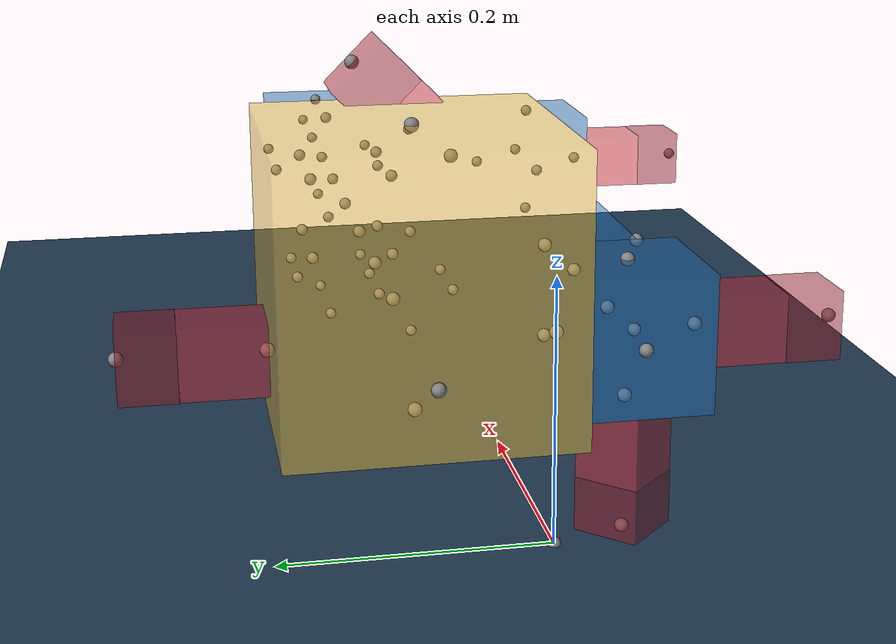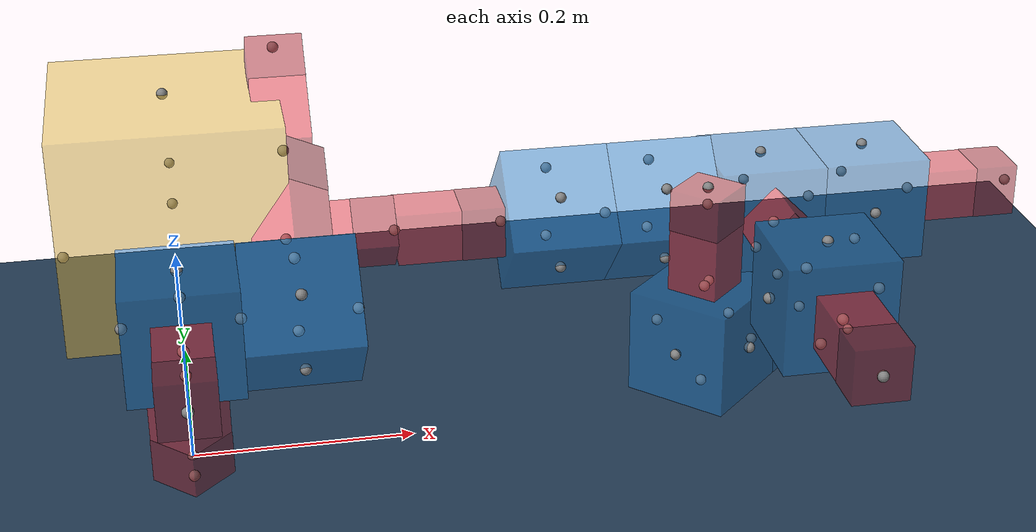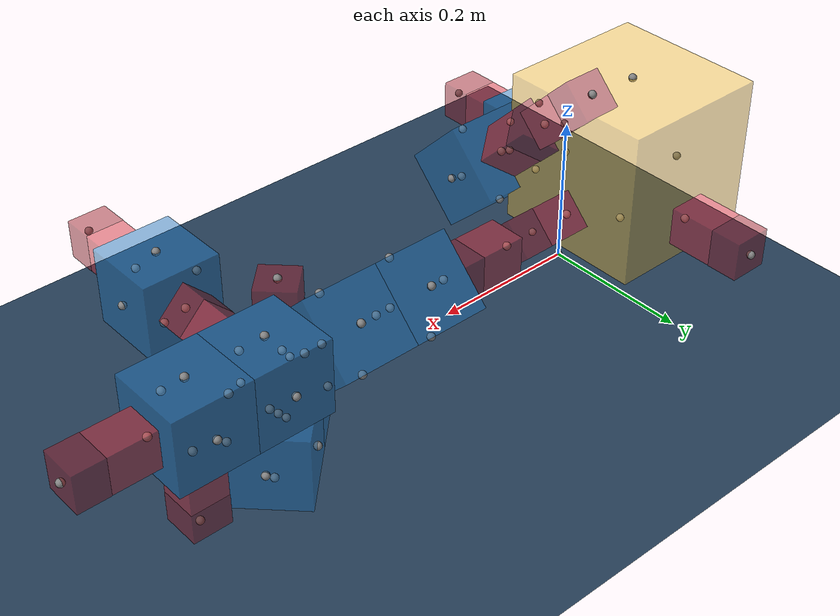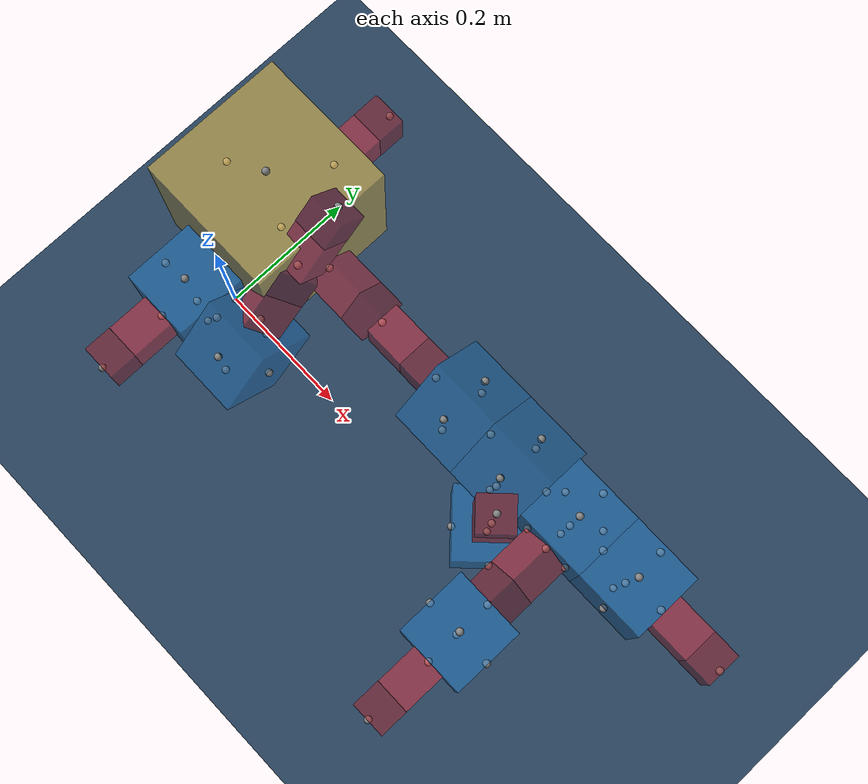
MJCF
<mujoco model="Simple Flat World">
  <compiler angle="radian"/>

  <option integrator="implicitfast"/>

  <visual>
    <global offwidth="1280" offheight="960"/>
  </visual>

  <default>
    <default class="robot1-main">
      <default class="robot1-0-12-1-main">
        <default class="robot1-0-12-1-12-3-3-main"/>
        <default class="robot1-0-12-1-12-25-4-main"/>
        <default class="robot1-0-12-1-12-28-0-main"/>
        <default class="robot1-0-12-1-25-1-2-main"/>
      </default>
      <default class="robot1-0-23-2-main"/>
      <default class="robot1-0-27-0-main"/>
      <default class="robot1-23-10-0-main"/>
      <default class="robot1-1-18-0-main"/>
      <default class="robot1-10-22-0-main"/>
      <default class="robot1-22-8-0-main"/>
      <default class="robot1-8-4-0-main"/>
      <default class="robot1-4-21-5-main"/>
      <default class="robot1-4-9-0-main"/>
      <default class="robot1-4-5-3-main"/>
      <default class="robot1-21-7-0-main"/>
      <default class="robot1-9-19-2-main"/>
      <default class="robot1-9-11-0-main"/>
      <default class="robot1-5-26-3-main"/>
      <default class="robot1-7-6-0-main"/>
      <default class="robot1-26-20-5-main"/>
    </default>
  </default>

  <asset>
    <texture type="2d" colorspace="auto" name="floor" builtin="checker" rgb1="0.1 0.2 0.3" rgb2="0.2 0.3 0.4" width="600" height="600"/>
    <material name="floor" texture="floor" texuniform="true" texrepeat="3 3"/>
  </asset>

  <worldbody>
    <site pos="0 0 0"/>
    <camera name="ortho-cam" pos="-5 0 5" quat="0.653281 0.270598 -0.270598 -0.653281" orthographic="true" fovy="5"/>
    <light name="light" pos="0 0 1" dir="0 0 -1" type="directional" castshadow="false"/>
    <body name="floor">
      <geom name="floor" size="5 5 0.5" type="plane" material="floor"/>
    </body>
    <body name="robot1-world" pos="0 0 0.21">
      <joint type="free"/>
      <body name="robot1-core">
        <geom name="robot1-core" size="0.1 0.1 0.1" pos="0 0.1 0" type="box" mass="1" rgba="0.992157 0.792157 0.25098 0.5"/>
        <site name="robot1-core-front" pos="0 0.2 -0.05"/>
        <site name="robot1-core-back" pos="0 0 -0.05" quat="0 0 0 1"/>
        <site name="robot1-core-left" pos="-0.1 0.1 -0.05" quat="0.707107 0 0 0.707107"/>
        <site name="robot1-core-right" pos="0.1 0.1 -0.05" quat="-0.707107 0 0 0.707107"/>
        <site name="robot1-core-top" pos="0 0.1 0.1" quat="0.707107 0.707107 0 0"/>
        <site name="robot1-core-bottom" pos="0 0.1 -0.1" quat="0 0 -0.707107 0.707107"/>
        <body name="robot1-0-12-1-brick" pos="0 0 -0.05" quat="0 -0.707107 0 -0.707107">
          <geom name="robot1-0-12-1-brick" size="0.05 0.05 0.05" pos="0 0.05 0" type="box" mass="0.055" rgba="0.109804 0.466667 0.764706 0.5"/>
          <site name="robot1-0-12-1-brick-front" pos="0 0.1 0"/>
          <site name="robot1-0-12-1-brick-left" pos="-0.05 0.05 0" quat="0.707107 0 0 0.707107"/>
          <site name="robot1-0-12-1-brick-right" pos="0.05 0.05 0" quat="-0.707107 0 0 0.707107"/>
          <site name="robot1-0-12-1-brick-top" pos="0 0.05 0.05" quat="0.707107 0.707107 0 0"/>
          <site name="robot1-0-12-1-brick-bottom" pos="0 0.05 -0.05" quat="0 0 -0.707107 0.707107"/>
          <body name="robot1-0-12-1-12-3-3-hinge" pos="-0.05 0.05 0" quat="0.270759 -0.653215 0.653215 0.270759">
            <body name="robot1-0-12-1-12-3-3-stator" pos="0 0.03 0">
              <geom name="robot1-0-12-1-12-3-3-stator" size="0.02475 0.0297 0.02475" type="box" mass="0.02" rgba="0.87451 0.160784 0.207843 0.5"/>
            </body>
            <body name="robot1-0-12-1-12-3-3-rotor" pos="0 0.08 0">
              <joint name="robot1-0-12-1-12-3-3-servo" pos="0 -0.02 0" axis="0 0 1"/>
              <geom name="robot1-0-12-1-12-3-3-rotor" size="0.025 0.02 0.025" type="box" mass="0.04" rgba="0.627451 0.0941176 0.129412 0.5"/>
              <site name="robot1-0-12-1-12-3-3-hinge-front" pos="0 0.02 0"/>
            </body>
          </body>
          <body name="robot1-0-12-1-12-25-4-brick" pos="0 0.05 0.05" quat="-0.653215 -0.653215 0.270759 0.270759">
            <geom name="robot1-0-12-1-12-25-4-brick" size="0.05 0.05 0.05" pos="0 0.05 0" type="box" mass="0.055" rgba="0.109804 0.466667 0.764706 0.5"/>
            <site name="robot1-0-12-1-12-25-4-brick-front" pos="0 0.1 0"/>
            <site name="robot1-0-12-1-12-25-4-brick-left" pos="-0.05 0.05 0" quat="0.707107 0 0 0.707107"/>
            <site name="robot1-0-12-1-12-25-4-brick-right" pos="0.05 0.05 0" quat="-0.707107 0 0 0.707107"/>
            <site name="robot1-0-12-1-12-25-4-brick-top" pos="0 0.05 0.05" quat="0.707107 0.707107 0 0"/>
            <site name="robot1-0-12-1-12-25-4-brick-bottom" pos="0 0.05 -0.05" quat="0 0 -0.707107 0.707107"/>
            <body name="robot1-0-12-1-25-1-2-hinge" pos="0.05 0.05 0" quat="-0.270759 -0.653215 -0.653215 0.270759">
              <body name="robot1-0-12-1-25-1-2-stator" pos="0 0.03 0">
                <geom name="robot1-0-12-1-25-1-2-stator" size="0.02475 0.0297 0.02475" type="box" mass="0.02" rgba="0.87451 0.160784 0.207843 0.5"/>
              </body>
              <body name="robot1-0-12-1-25-1-2-rotor" pos="0 0.08 0">
                <joint name="robot1-0-12-1-25-1-2-servo" pos="0 -0.02 0" axis="0 0 1"/>
                <geom name="robot1-0-12-1-25-1-2-rotor" size="0.025 0.02 0.025" type="box" mass="0.04" rgba="0.627451 0.0941176 0.129412 0.5"/>
                <site name="robot1-0-12-1-25-1-2-hinge-front" pos="0 0.02 0"/>
                <body name="robot1-1-18-0-hinge" pos="0 0.02 0" quat="0.382911 0 0.923785 0">
                  <body name="robot1-1-18-0-stator" pos="0 0.03 0">
                    <geom name="robot1-1-18-0-stator" size="0.02475 0.0297 0.02475" type="box" mass="0.02" rgba="0.87451 0.160784 0.207843 0.5"/>
                  </body>
                  <body name="robot1-1-18-0-rotor" pos="0 0.08 0">
                    <joint name="robot1-1-18-0-servo" pos="0 -0.02 0" axis="0 0 1"/>
                    <geom name="robot1-1-18-0-rotor" size="0.025 0.02 0.025" type="box" mass="0.04" rgba="0.627451 0.0941176 0.129412 0.5"/>
                    <site name="robot1-1-18-0-hinge-front" pos="0 0.02 0"/>
                  </body>
                </body>
              </body>
            </body>
          </body>
          <body name="robot1-0-12-1-12-28-0-hinge" pos="0 0.1 0" quat="0 0 1 0">
            <body name="robot1-0-12-1-12-28-0-stator" pos="0 0.03 0">
              <geom name="robot1-0-12-1-12-28-0-stator" size="0.02475 0.0297 0.02475" type="box" mass="0.02" rgba="0.87451 0.160784 0.207843 0.5"/>
            </body>
            <body name="robot1-0-12-1-12-28-0-rotor" pos="0 0.08 0">
              <joint name="robot1-0-12-1-12-28-0-servo" pos="0 -0.02 0" axis="0 0 1"/>
              <geom name="robot1-0-12-1-12-28-0-rotor" size="0.025 0.02 0.025" type="box" mass="0.04" rgba="0.627451 0.0941176 0.129412 0.5"/>
              <site name="robot1-0-12-1-12-28-0-hinge-front" pos="0 0.02 0"/>
            </body>
          </body>
        </body>
        <body name="robot1-0-23-2-hinge" pos="0.1 0.1 -0.05" quat="0.270759 -0.653215 -0.653215 -0.270759">
          <body name="robot1-0-23-2-stator" pos="0 0.03 0">
            <geom name="robot1-0-23-2-stator" size="0.02475 0.0297 0.02475" type="box" mass="0.02" rgba="0.87451 0.160784 0.207843 0.5"/>
          </body>
          <body name="robot1-0-23-2-rotor" pos="0 0.08 0">
            <joint name="robot1-0-23-2-servo" pos="0 -0.02 0" axis="0 0 1"/>
            <geom name="robot1-0-23-2-rotor" size="0.025 0.02 0.025" type="box" mass="0.04" rgba="0.627451 0.0941176 0.129412 0.5"/>
            <site name="robot1-0-23-2-hinge-front" pos="0 0.02 0"/>
            <body name="robot1-23-10-0-hinge" pos="0 0.02 0" quat="-0.923785 0 0.382911 0">
              <body name="robot1-23-10-0-stator" pos="0 0.03 0">
                <geom name="robot1-23-10-0-stator" size="0.02475 0.0297 0.02475" type="box" mass="0.02" rgba="0.87451 0.160784 0.207843 0.5"/>
              </body>
              <body name="robot1-23-10-0-rotor" pos="0 0.08 0">
                <joint name="robot1-23-10-0-servo" pos="0 -0.02 0" axis="0 0 1"/>
                <geom name="robot1-23-10-0-rotor" size="0.025 0.02 0.025" type="box" mass="0.04" rgba="0.627451 0.0941176 0.129412 0.5"/>
                <site name="robot1-23-10-0-hinge-front" pos="0 0.02 0"/>
                <body name="robot1-10-22-0-brick" pos="0 0.02 0" quat="-0.382911 0 0.923785 0">
                  <geom name="robot1-10-22-0-brick" size="0.05 0.05 0.05" pos="0 0.05 0" type="box" mass="0.055" rgba="0.109804 0.466667 0.764706 0.5"/>
                  <site name="robot1-10-22-0-brick-front" pos="0 0.1 0"/>
                  <site name="robot1-10-22-0-brick-left" pos="-0.05 0.05 0" quat="0.707107 0 0 0.707107"/>
                  <site name="robot1-10-22-0-brick-right" pos="0.05 0.05 0" quat="-0.707107 0 0 0.707107"/>
                  <site name="robot1-10-22-0-brick-top" pos="0 0.05 0.05" quat="0.707107 0.707107 0 0"/>
                  <site name="robot1-10-22-0-brick-bottom" pos="0 0.05 -0.05" quat="0 0 -0.707107 0.707107"/>
                  <body name="robot1-22-8-0-brick" pos="0 0.1 0">
                    <geom name="robot1-22-8-0-brick" size="0.05 0.05 0.05" pos="0 0.05 0" type="box" mass="0.055" rgba="0.109804 0.466667 0.764706 0.5"/>
                    <site name="robot1-22-8-0-brick-front" pos="0 0.1 0"/>
                    <site name="robot1-22-8-0-brick-left" pos="-0.05 0.05 0" quat="0.707107 0 0 0.707107"/>
                    <site name="robot1-22-8-0-brick-right" pos="0.05 0.05 0" quat="-0.707107 0 0 0.707107"/>
                    <site name="robot1-22-8-0-brick-top" pos="0 0.05 0.05" quat="0.707107 0.707107 0 0"/>
                    <site name="robot1-22-8-0-brick-bottom" pos="0 0.05 -0.05" quat="0 0 -0.707107 0.707107"/>
                    <body name="robot1-8-4-0-brick" pos="0 0.1 0" quat="-0.382911 0 0.923785 0">
                      <geom name="robot1-8-4-0-brick" size="0.05 0.05 0.05" pos="0 0.05 0" type="box" mass="0.055" rgba="0.109804 0.466667 0.764706 0.5"/>
                      <site name="robot1-8-4-0-brick-front" pos="0 0.1 0"/>
                      <site name="robot1-8-4-0-brick-left" pos="-0.05 0.05 0" quat="0.707107 0 0 0.707107"/>
                      <site name="robot1-8-4-0-brick-right" pos="0.05 0.05 0" quat="-0.707107 0 0 0.707107"/>
                      <site name="robot1-8-4-0-brick-top" pos="0 0.05 0.05" quat="0.707107 0.707107 0 0"/>
                      <site name="robot1-8-4-0-brick-bottom" pos="0 0.05 -0.05" quat="0 0 -0.707107 0.707107"/>
                      <body name="robot1-4-21-5-hinge" pos="0 0.05 -0.05" quat="0.270759 -0.270759 0.653215 -0.653215">
                        <body name="robot1-4-21-5-stator" pos="0 0.03 0">
                          <geom name="robot1-4-21-5-stator" size="0.02475 0.0297 0.02475" type="box" mass="0.02" rgba="0.87451 0.160784 0.207843 0.5"/>
                        </body>
                        <body name="robot1-4-21-5-rotor" pos="0 0.08 0">
                          <joint name="robot1-4-21-5-servo" pos="0 -0.02 0" axis="0 0 1"/>
                          <geom name="robot1-4-21-5-rotor" size="0.025 0.02 0.025" type="box" mass="0.04" rgba="0.627451 0.0941176 0.129412 0.5"/>
                          <site name="robot1-4-21-5-hinge-front" pos="0 0.02 0"/>
                          <body name="robot1-21-7-0-brick" pos="0 0.02 0" quat="0.923785 0 0.382911 0">
                            <geom name="robot1-21-7-0-brick" size="0.05 0.05 0.05" pos="0 0.05 0" type="box" mass="0.055" rgba="0.109804 0.466667 0.764706 0.5"/>
                            <site name="robot1-21-7-0-brick-front" pos="0 0.1 0"/>
                            <site name="robot1-21-7-0-brick-left" pos="-0.05 0.05 0" quat="0.707107 0 0 0.707107"/>
                            <site name="robot1-21-7-0-brick-right" pos="0.05 0.05 0" quat="-0.707107 0 0 0.707107"/>
                            <site name="robot1-21-7-0-brick-top" pos="0 0.05 0.05" quat="0.707107 0.707107 0 0"/>
                            <site name="robot1-21-7-0-brick-bottom" pos="0 0.05 -0.05" quat="0 0 -0.707107 0.707107"/>
                            <body name="robot1-7-6-0-hinge" pos="0 0.1 0" quat="-0.707107 0 0.707107 0">
                              <body name="robot1-7-6-0-stator" pos="0 0.03 0">
                                <geom name="robot1-7-6-0-stator" size="0.02475 0.0297 0.02475" type="box" mass="0.02" rgba="0.87451 0.160784 0.207843 0.5"/>
                              </body>
                              <body name="robot1-7-6-0-rotor" pos="0 0.08 0">
                                <joint name="robot1-7-6-0-servo" pos="0 -0.02 0" axis="0 0 1"/>
                                <geom name="robot1-7-6-0-rotor" size="0.025 0.02 0.025" type="box" mass="0.04" rgba="0.627451 0.0941176 0.129412 0.5"/>
                                <site name="robot1-7-6-0-hinge-front" pos="0 0.02 0"/>
                              </body>
                            </body>
                          </body>
                        </body>
                      </body>
                      <body name="robot1-4-9-0-brick" pos="0 0.1 0" quat="0 0 1 0">
                        <geom name="robot1-4-9-0-brick" size="0.05 0.05 0.05" pos="0 0.05 0" type="box" mass="0.055" rgba="0.109804 0.466667 0.764706 0.5"/>
                        <site name="robot1-4-9-0-brick-front" pos="0 0.1 0"/>
                        <site name="robot1-4-9-0-brick-left" pos="-0.05 0.05 0" quat="0.707107 0 0 0.707107"/>
                        <site name="robot1-4-9-0-brick-right" pos="0.05 0.05 0" quat="-0.707107 0 0 0.707107"/>
                        <site name="robot1-4-9-0-brick-top" pos="0 0.05 0.05" quat="0.707107 0.707107 0 0"/>
                        <site name="robot1-4-9-0-brick-bottom" pos="0 0.05 -0.05" quat="0 0 -0.707107 0.707107"/>
                        <body name="robot1-9-19-2-hinge" pos="0.05 0.05 0" quat="-0.5 -0.5 -0.5 0.5">
                          <body name="robot1-9-19-2-stator" pos="0 0.03 0">
                            <geom name="robot1-9-19-2-stator" size="0.02475 0.0297 0.02475" type="box" mass="0.02" rgba="0.87451 0.160784 0.207843 0.5"/>
                          </body>
                          <body name="robot1-9-19-2-rotor" pos="0 0.08 0">
                            <joint name="robot1-9-19-2-servo" pos="0 -0.02 0" axis="0 0 1"/>
                            <geom name="robot1-9-19-2-rotor" size="0.025 0.02 0.025" type="box" mass="0.04" rgba="0.627451 0.0941176 0.129412 0.5"/>
                            <site name="robot1-9-19-2-hinge-front" pos="0 0.02 0"/>
                          </body>
                        </body>
                        <body name="robot1-9-11-0-hinge" pos="0 0.1 0" quat="0 0 1 0">
                          <body name="robot1-9-11-0-stator" pos="0 0.03 0">
                            <geom name="robot1-9-11-0-stator" size="0.02475 0.0297 0.02475" type="box" mass="0.02" rgba="0.87451 0.160784 0.207843 0.5"/>
                          </body>
                          <body name="robot1-9-11-0-rotor" pos="0 0.08 0">
                            <joint name="robot1-9-11-0-servo" pos="0 -0.02 0" axis="0 0 1"/>
                            <geom name="robot1-9-11-0-rotor" size="0.025 0.02 0.025" type="box" mass="0.04" rgba="0.627451 0.0941176 0.129412 0.5"/>
                            <site name="robot1-9-11-0-hinge-front" pos="0 0.02 0"/>
                          </body>
                        </body>
                      </body>
                      <body name="robot1-4-5-3-brick" pos="-0.05 0.05 0" quat="-0.653215 -0.270759 0.270759 -0.653215">
                        <geom name="robot1-4-5-3-brick" size="0.05 0.05 0.05" pos="0 0.05 0" type="box" mass="0.055" rgba="0.109804 0.466667 0.764706 0.5"/>
                        <site name="robot1-4-5-3-brick-front" pos="0 0.1 0"/>
                        <site name="robot1-4-5-3-brick-left" pos="-0.05 0.05 0" quat="0.707107 0 0 0.707107"/>
                        <site name="robot1-4-5-3-brick-right" pos="0.05 0.05 0" quat="-0.707107 0 0 0.707107"/>
                        <site name="robot1-4-5-3-brick-top" pos="0 0.05 0.05" quat="0.707107 0.707107 0 0"/>
                        <site name="robot1-4-5-3-brick-bottom" pos="0 0.05 -0.05" quat="0 0 -0.707107 0.707107"/>
                        <body name="robot1-5-26-3-brick" pos="-0.05 0.05 0" quat="0.5 -0.5 0.5 0.5">
                          <geom name="robot1-5-26-3-brick" size="0.05 0.05 0.05" pos="0 0.05 0" type="box" mass="0.055" rgba="0.109804 0.466667 0.764706 0.5"/>
                          <site name="robot1-5-26-3-brick-front" pos="0 0.1 0"/>
                          <site name="robot1-5-26-3-brick-left" pos="-0.05 0.05 0" quat="0.707107 0 0 0.707107"/>
                          <site name="robot1-5-26-3-brick-right" pos="0.05 0.05 0" quat="-0.707107 0 0 0.707107"/>
                          <site name="robot1-5-26-3-brick-top" pos="0 0.05 0.05" quat="0.707107 0.707107 0 0"/>
                          <site name="robot1-5-26-3-brick-bottom" pos="0 0.05 -0.05" quat="0 0 -0.707107 0.707107"/>
                          <body name="robot1-26-20-5-hinge" pos="0 0.05 -0.05" quat="0.5 -0.5 -0.5 0.5">
                            <body name="robot1-26-20-5-stator" pos="0 0.03 0">
                              <geom name="robot1-26-20-5-stator" size="0.02475 0.0297 0.02475" type="box" mass="0.02" rgba="0.87451 0.160784 0.207843 0.5"/>
                            </body>
                            <body name="robot1-26-20-5-rotor" pos="0 0.08 0">
                              <joint name="robot1-26-20-5-servo" pos="0 -0.02 0" axis="0 0 1"/>
                              <geom name="robot1-26-20-5-rotor" size="0.025 0.02 0.025" type="box" mass="0.04" rgba="0.627451 0.0941176 0.129412 0.5"/>
                              <site name="robot1-26-20-5-hinge-front" pos="0 0.02 0"/>
                            </body>
                          </body>
                        </body>
                      </body>
                    </body>
                  </body>
                </body>
              </body>
            </body>
          </body>
        </body>
        <body name="robot1-0-27-0-hinge" pos="0 0.2 -0.05" quat="0 0 1 0">
          <body name="robot1-0-27-0-stator" pos="0 0.03 0">
            <geom name="robot1-0-27-0-stator" size="0.02475 0.0297 0.02475" type="box" mass="0.02" rgba="0.87451 0.160784 0.207843 0.5"/>
          </body>
          <body name="robot1-0-27-0-rotor" pos="0 0.08 0">
            <joint name="robot1-0-27-0-servo" pos="0 -0.02 0" axis="0 0 1"/>
            <geom name="robot1-0-27-0-rotor" size="0.025 0.02 0.025" type="box" mass="0.04" rgba="0.627451 0.0941176 0.129412 0.5"/>
            <site name="robot1-0-27-0-hinge-front" pos="0 0.02 0"/>
          </body>
        </body>
      </body>
    </body>
  </worldbody>

  <contact>
    <exclude body1="robot1-0-12-1-12-3-3-stator" body2="robot1-0-12-1-12-3-3-rotor"/>
    <exclude body1="robot1-0-12-1-25-1-2-stator" body2="robot1-0-12-1-25-1-2-rotor"/>
    <exclude body1="robot1-1-18-0-stator" body2="robot1-1-18-0-rotor"/>
    <exclude body1="robot1-0-12-1-12-28-0-stator" body2="robot1-0-12-1-12-28-0-rotor"/>
    <exclude body1="robot1-0-23-2-stator" body2="robot1-0-23-2-rotor"/>
    <exclude body1="robot1-23-10-0-stator" body2="robot1-23-10-0-rotor"/>
    <exclude body1="robot1-4-21-5-stator" body2="robot1-4-21-5-rotor"/>
    <exclude body1="robot1-7-6-0-stator" body2="robot1-7-6-0-rotor"/>
    <exclude body1="robot1-9-19-2-stator" body2="robot1-9-19-2-rotor"/>
    <exclude body1="robot1-9-11-0-stator" body2="robot1-9-11-0-rotor"/>
    <exclude body1="robot1-26-20-5-stator" body2="robot1-26-20-5-rotor"/>
    <exclude body1="robot1-0-27-0-stator" body2="robot1-0-27-0-rotor"/>
  </contact>

  <actuator>
    <general name="robot1-0-12-1-12-3-3-servo" joint="robot1-0-12-1-12-3-3-servo" ctrlrange="-1.5708 1.5708" dynprm="0 0 0 0 0 0 0 0 0 0" biastype="affine" biasprm="0 -1 -1"/>
    <general name="robot1-0-12-1-12-28-0-servo" joint="robot1-0-12-1-12-28-0-servo" ctrlrange="-1.5708 1.5708" dynprm="0 0 0 0 0 0 0 0 0 0" biastype="affine" biasprm="0 -1 -1"/>
    <general name="robot1-0-12-1-25-1-2-servo" joint="robot1-0-12-1-25-1-2-servo" ctrlrange="-1.5708 1.5708" dynprm="0 0 0 0 0 0 0 0 0 0" biastype="affine" biasprm="0 -1 -1"/>
    <general name="robot1-0-23-2-servo" joint="robot1-0-23-2-servo" ctrlrange="-1.5708 1.5708" dynprm="0 0 0 0 0 0 0 0 0 0" biastype="affine" biasprm="0 -1 -1"/>
    <general name="robot1-0-27-0-servo" joint="robot1-0-27-0-servo" ctrlrange="-1.5708 1.5708" dynprm="0 0 0 0 0 0 0 0 0 0" biastype="affine" biasprm="0 -1 -1"/>
    <general name="robot1-23-10-0-servo" joint="robot1-23-10-0-servo" ctrlrange="-1.5708 1.5708" dynprm="0 0 0 0 0 0 0 0 0 0" biastype="affine" biasprm="0 -1 -1"/>
    <general name="robot1-1-18-0-servo" joint="robot1-1-18-0-servo" ctrlrange="-1.5708 1.5708" dynprm="0 0 0 0 0 0 0 0 0 0" biastype="affine" biasprm="0 -1 -1"/>
    <general name="robot1-4-21-5-servo" joint="robot1-4-21-5-servo" ctrlrange="-1.5708 1.5708" dynprm="0 0 0 0 0 0 0 0 0 0" biastype="affine" biasprm="0 -1 -1"/>
    <general name="robot1-9-19-2-servo" joint="robot1-9-19-2-servo" ctrlrange="-1.5708 1.5708" dynprm="0 0 0 0 0 0 0 0 0 0" biastype="affine" biasprm="0 -1 -1"/>
    <general name="robot1-9-11-0-servo" joint="robot1-9-11-0-servo" ctrlrange="-1.5708 1.5708" dynprm="0 0 0 0 0 0 0 0 0 0" biastype="affine" biasprm="0 -1 -1"/>
    <general name="robot1-7-6-0-servo" joint="robot1-7-6-0-servo" ctrlrange="-1.5708 1.5708" dynprm="0 0 0 0 0 0 0 0 0 0" biastype="affine" biasprm="0 -1 -1"/>
    <general name="robot1-26-20-5-servo" joint="robot1-26-20-5-servo" ctrlrange="-1.5708 1.5708" dynprm="0 0 0 0 0 0 0 0 0 0" biastype="affine" biasprm="0 -1 -1"/>
  </actuator>
</mujoco>
